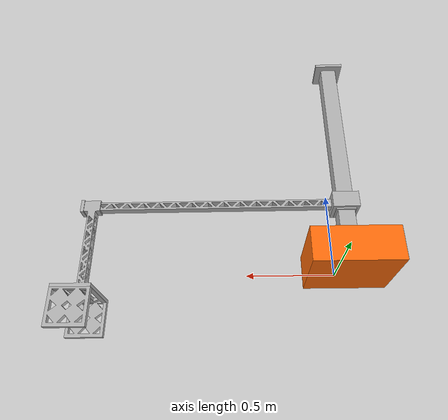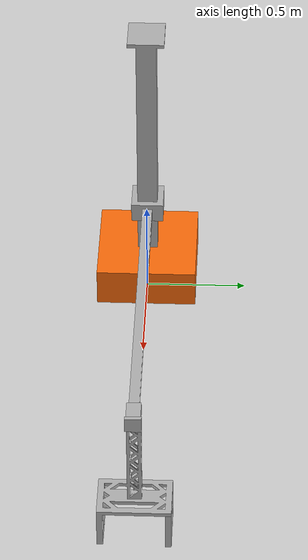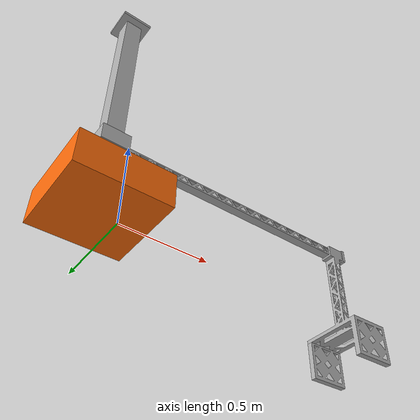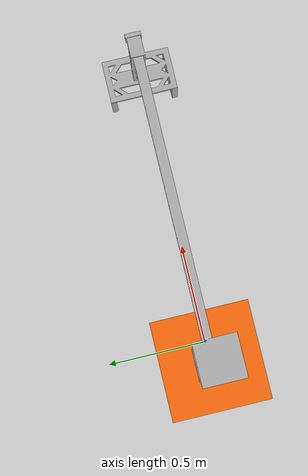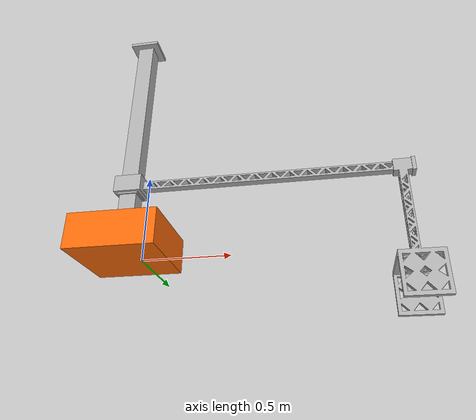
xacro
<?xml version="1.0" ?>
<robot name="janitor" xmlns:xacro="http://www.ros.org/wiki/xacro">

<xacro:include filename="$(find janitor_description)/urdf/materials.xacro" />
<xacro:include filename="$(find janitor_description)/urdf/janitor.trans" />
<xacro:include filename="$(find janitor_description)/urdf/janitor.gazebo" />

<link name="base_link">
    <collision>
      <origin xyz="-0.1 0 0.1" rpy="0 0 0"/>
      <geometry>
        <box size="0.5 0.5 0.2"/>
      </geometry>
    </collision>

    <visual>
      <origin xyz="-0.1 0 0.1" rpy="0 0 0"/>
      <geometry>
        <box size="0.5 0.5 0.2"/>
      </geometry>
      <material name="orange"/>
    </visual>

    <inertial>
      <origin xyz="0 0 0.05" rpy="0 0 0"/>
      <mass value="25"/>
      <inertia
        ixx="25.0" ixy="0.0" ixz="0.0"
        iyy="25.0" iyz="0.0"
        izz="25.0"/>
    </inertial>
  </link>

<link name="vertical_body_1">
  <inertial>
    <origin rpy="0 0 0" xyz="-2.220270275826719e-07 -3.129303590596825e-07 0.6797932577648836"/>
    <mass value="14.513519999999996"/>
    <inertia ixx="2.249865" ixy="0.0" ixz="0.0" iyy="2.249865" iyz="-0.0" izz="0.026865"/>
  </inertial>
  <visual>
    <origin rpy="0 0 0" xyz="0.108697 -0.000637 -0.195136"/>
    <geometry>
      <mesh filename="package://janitor_description/meshes/vertical_body_1.stl" scale="0.001 0.001 0.001"/>
    </geometry>
    <material name="silver_default"/>
  </visual>
  <collision>
    <origin rpy="0 0 0" xyz="0.108697 -0.000637 -0.195136"/>
    <geometry>
      <mesh filename="package://janitor_description/meshes/vertical_body_1.stl" scale="0.001 0.001 0.001"/>
    </geometry>
  </collision>
</link>

<link name="horizontal_body_1">
  <inertial>
    <origin rpy="0 0 0" xyz="0.5984419722507355 -3.129303590811497e-07 0.04970922857426663"/>
    <mass value="3.0"/>
    <inertia ixx="0.007712" ixy="-0.0" ixz="0.000479" iyy="1.407278" iyz="0.0" izz="1.410619"/>
  </inertial>
  <visual>
    <origin rpy="0 0 0" xyz="0.158697 -0.000637 -0.401136"/>
    <geometry>
      <mesh filename="package://janitor_description/meshes/horizontal_body_1.stl" scale="0.001 0.001 0.001"/>
    </geometry>
    <material name="silver_default"/>
  </visual>
  <collision>
    <origin rpy="0 0 0" xyz="0.158697 -0.000637 -0.401136"/>
    <geometry>
      <mesh filename="package://janitor_description/meshes/horizontal_body_1.stl" scale="0.001 0.001 0.001"/>
    </geometry>
  </collision>
</link>

<link name="vertical_pickup_body_1">
  <inertial>
    <origin rpy="0 0 0" xyz="-0.04787954786711146 -0.05575573742860998 -0.512801661589241"/>
    <mass value="3.3011829023328936"/>
    <inertia ixx="0.183863" ixy="7e-05" ixz="0.000668" iyy="0.158497" iyz="-0.031306" izz="0.047022"/>
  </inertial>
  <visual>
    <origin rpy="0 0 0" xyz="-1.496303 -0.000637 -0.476136"/>
    <geometry>
      <mesh filename="package://janitor_description/meshes/vertical_pickup_body_1.stl" scale="0.001 0.001 0.001"/>
    </geometry>
    <material name="silver_default"/>
  </visual>
  <collision>
    <origin rpy="0 0 0" xyz="-1.496303 -0.000637 -0.476136"/>
    <geometry>
      <mesh filename="package://janitor_description/meshes/vertical_pickup_body_1.stl" scale="0.001 0.001 0.001"/>
    </geometry>
  </collision>
</link>

<link name="gripper_1">
  <inertial>
    <origin rpy="0 0 0" xyz="-2.2202702276707953e-07 -0.015000312930359055 -0.10632446634511768"/>
    <mass value="1.1878142875593714"/>
    <inertia ixx="0.004456" ixy="0.0" ixz="0.0" iyy="0.009497" iyz="0.0" izz="0.005219"/>
  </inertial>
  <visual>
    <origin rpy="0 0 0" xyz="-1.448803 -0.180637 0.103864"/>
    <geometry>
      <mesh filename="package://janitor_description/meshes/gripper_1.stl" scale="0.001 0.001 0.001"/>
    </geometry>
    <material name="silver_default"/>
  </visual>
  <collision>
    <origin rpy="0 0 0" xyz="-1.448803 -0.180637 0.103864"/>
    <geometry>
      <mesh filename="package://janitor_description/meshes/gripper_1.stl" scale="0.001 0.001 0.001"/>
    </geometry>
  </collision>
</link>

<link name="world"/>

<joint name="fixed_joint" type="fixed">
  <parent link="world"/>
  <child link="base_link"/>
</joint>

<joint name="twist_joint" type="revolute">
  <origin rpy="0 0 0" xyz="-0.108697 0.000637 0.195136"/>
  <parent link="base_link"/>
  <child link="vertical_body_1"/>
  <axis xyz="0.0 0.0 1.0"/>
  <limit effort="100" lower="-3.141593" upper="3.141593" velocity="0.4"/>
</joint>

<joint name="prismatic_vertical" type="prismatic">
  <origin rpy="0 0 0" xyz="-0.05 0.0 0.206"/>
  <parent link="vertical_body_1"/>
  <child link="horizontal_body_1"/>
  <axis xyz="0.0 0.0 1.0"/>
  <limit effort="15000" lower="0.0" upper="0.975" velocity="5"/>
</joint>

<joint name="prismatic_horizontal" type="prismatic">
  <origin rpy="0 0 0" xyz="1.655 0.0 0.075"/>
  <parent link="horizontal_body_1"/>
  <child link="vertical_pickup_body_1"/>
  <axis xyz="-1.0 0.0 0.0"/>
  <limit effort="100" lower="0.0" upper="1.3" velocity="100"/>
</joint>

<joint name="prismatic_gripper" type="prismatic">
  <origin rpy="0 0 0" xyz="-0.0475 0.18 -0.58"/>
  <parent link="vertical_pickup_body_1"/>
  <child link="gripper_1"/>
  <axis xyz="-0.0 1.0 0.0"/>
  <limit effort="100" lower="-0.225" upper="0.0" velocity="100"/>
</joint>

</robot>

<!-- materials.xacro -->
<robot name="janitor" xmlns:xacro="http://www.ros.org/wiki/xacro" >

<material name="silver_default">
  <color rgba="0.700 0.700 0.700 1.000"/>
</material>

 <material name="orange">
    <color rgba="${255/255} ${108/255} ${10/255} 1.0"/>
  </material>

</robot>

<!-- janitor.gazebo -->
<robot name="janitor" xmlns:xacro="http://www.ros.org/wiki/xacro" >

<xacro:property name="body_color" value="Gazebo/Silver" />

<gazebo>
  <plugin filename="libgazebo_ros_control.so" name="control">
  <robotNamespace>/janitor</robotNamespace>
  </plugin>
</gazebo>

<gazebo reference="vertical_body_1">
  <material>${body_color}</material>
  <mu1>0.2</mu1>
  <mu2>0.2</mu2>
  <selfCollide>true</selfCollide>
</gazebo>

<gazebo reference="horizontal_body_1">
  <material>${body_color}</material>
  <mu1>0.2</mu1>
  <mu2>0.2</mu2>
  <selfCollide>true</selfCollide>
</gazebo>

<gazebo reference="vertical_pickup_body_1">
  <material>${body_color}</material>
  <mu1>0.2</mu1>
  <mu2>0.2</mu2>
  <selfCollide>true</selfCollide>
</gazebo>

<gazebo reference="gripper_1">
  <material>${body_color}</material>
  <mu1>10000</mu1>
  <mu2>10000</mu2>
  <selfCollide>true</selfCollide>
</gazebo>

</robot>
